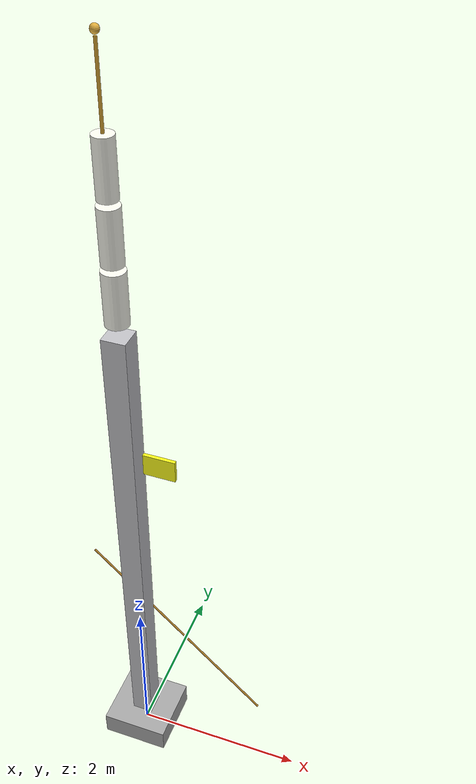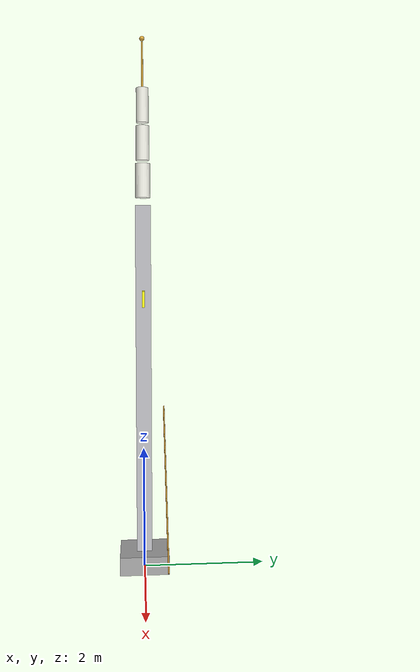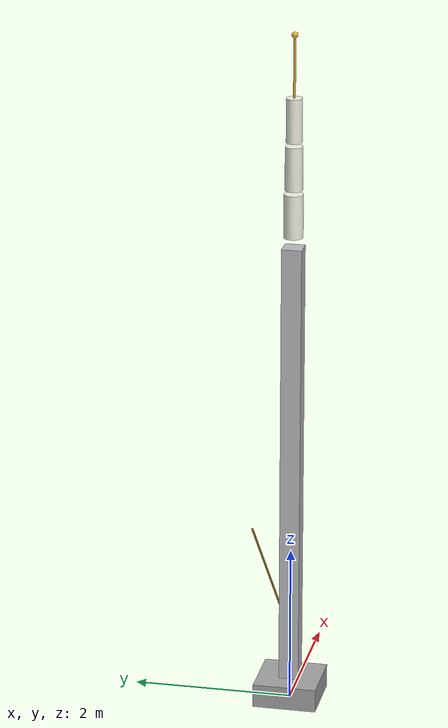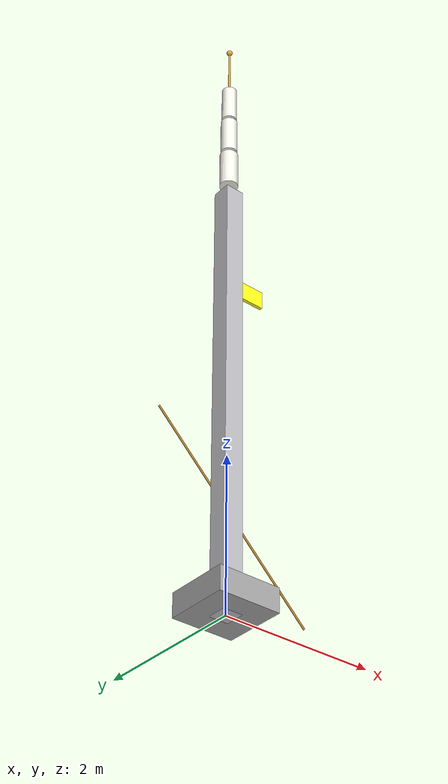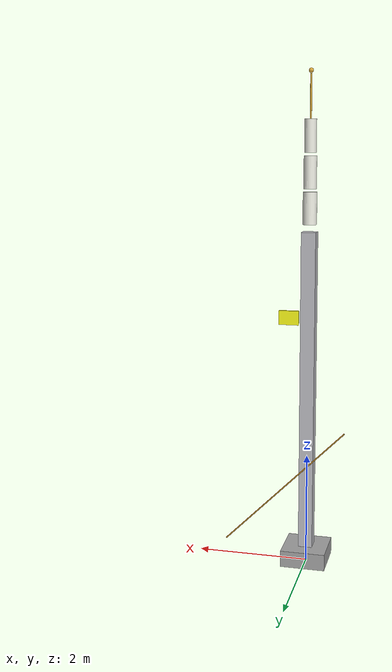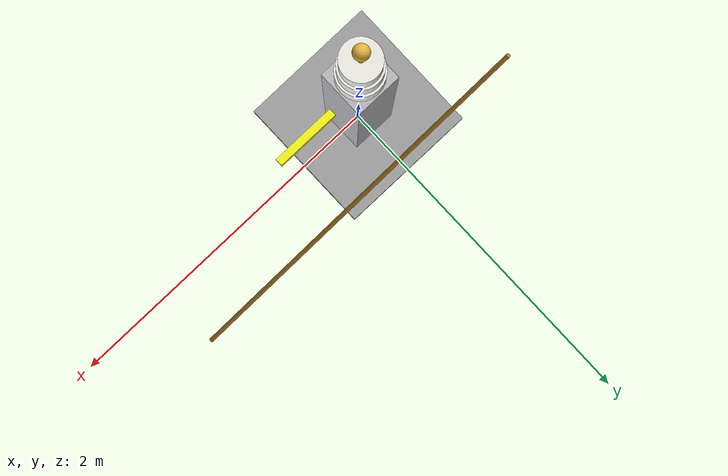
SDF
<?xml version="1.0"?>

<sdf version="1.10">

<model name="lightning_arrester">

  <static>true</static>

  <link name="tower">

    <!-- Galvanized support mast -->
    <visual name="mast">
      <pose>0 0 3 0 0 0</pose>
      <geometry>
        <box>
          <size>0.25 0.25 6</size>
        </box>
      </geometry>
      <material>
        <ambient>0.65 0.65 0.67 1</ambient>
        <diffuse>0.75 0.75 0.77 1</diffuse>
        <specular>0.35 0.35 0.35 1</specular>
      </material>
    </visual>

    <visual name="base_plate">
      <pose>0 0 0.15 0 0 0</pose>
      <geometry>
        <box>
          <size>0.8 0.8 0.3</size>
        </box>
      </geometry>
      <material>
        <ambient>0.55 0.55 0.55 1</ambient>
        <diffuse>0.65 0.65 0.65 1</diffuse>
      </material>
    </visual>

    <!-- Porcelain surge stack -->
    <visual name="arrester_stack_1">
      <pose>0 0 6.4 0 0 0</pose>
      <geometry>
        <cylinder>
          <radius>0.12</radius>
          <length>0.55</length>
        </cylinder>
      </geometry>
      <material>
        <ambient>0.92 0.92 0.88 1</ambient>
        <diffuse>0.97 0.97 0.93 1</diffuse>
        <specular>0.35 0.35 0.35 1</specular>
      </material>
    </visual>

    <visual name="arrester_stack_2">
      <pose>0 0 7.0 0 0 0</pose>
      <geometry>
        <cylinder>
          <radius>0.11</radius>
          <length>0.55</length>
        </cylinder>
      </geometry>
      <material>
        <ambient>0.92 0.92 0.88 1</ambient>
        <diffuse>0.97 0.97 0.93 1</diffuse>
      </material>
    </visual>

    <visual name="arrester_stack_3">
      <pose>0 0 7.6 0 0 0</pose>
      <geometry>
        <cylinder>
          <radius>0.10</radius>
          <length>0.55</length>
        </cylinder>
      </geometry>
      <material>
        <ambient>0.92 0.92 0.88 1</ambient>
        <diffuse>0.97 0.97 0.93 1</diffuse>
      </material>
    </visual>

    <!-- Lightning rod tip -->
    <visual name="lightning_rod">
      <pose>0 0 8.2 0 0 0</pose>
      <geometry>
        <cylinder>
          <radius>0.015</radius>
          <length>0.8</length>
        </cylinder>
      </geometry>
      <material>
        <ambient>0.75 0.55 0.15 1</ambient>
        <diffuse>0.85 0.65 0.2 1</diffuse>
      </material>
    </visual>

    <visual name="rod_tip">
      <pose>0 0 8.65 0 0 0</pose>
      <geometry>
        <sphere>
          <radius>0.04</radius>
        </sphere>
      </geometry>
      <material>
        <ambient>0.8 0.6 0.2 1</ambient>
        <diffuse>0.9 0.7 0.25 1</diffuse>
      </material>
    </visual>

    <!-- Ground conductor -->
    <visual name="ground_conductor">
      <pose>0.35 0.35 1.5 0 -0.785 0</pose>
      <geometry>
        <cylinder>
          <radius>0.012</radius>
          <length>3.0</length>
        </cylinder>
      </geometry>
      <material>
        <ambient>0.6 0.4 0.1 1</ambient>
        <diffuse>0.7 0.5 0.15 1</diffuse>
      </material>
    </visual>

    <visual name="warning_tag">
      <pose>0.35 0 4.5 0 0 0</pose>
      <geometry>
        <box>
          <size>0.35 0.04 0.25</size>
        </box>
      </geometry>
      <material>
        <ambient>1 1 0 1</ambient>
        <diffuse>1 1 0.1 1</diffuse>
      </material>
    </visual>

    <collision name="collision">
      <pose>0 0 3 0 0 0</pose>
      <geometry>
        <box>
          <size>0.5 0.5 6</size>
        </box>
      </geometry>
    </collision>

  </link>

</model>

</sdf>
